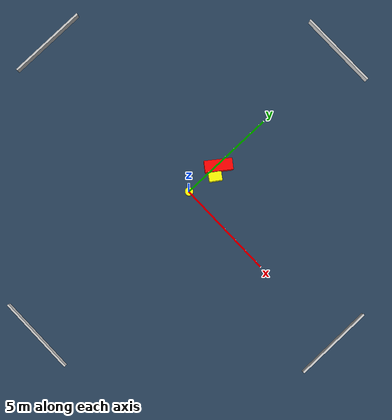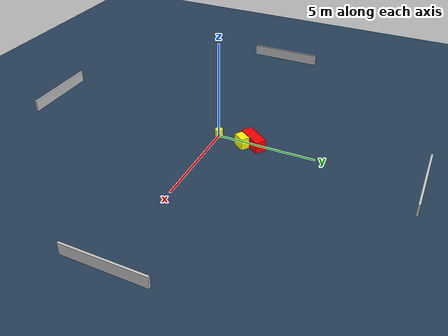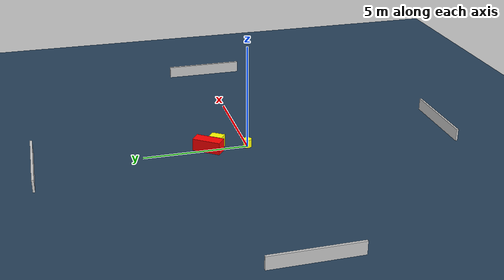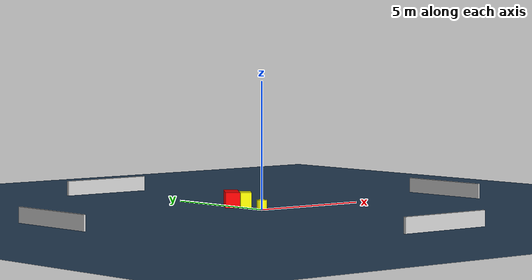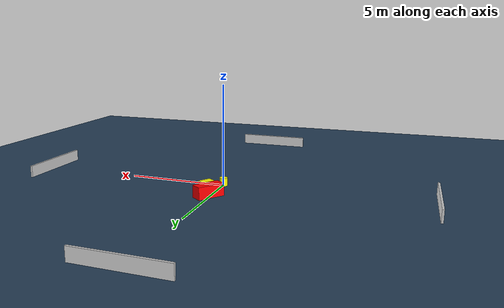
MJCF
<?xml version="1.0" ?>
<mujoco model="generated_environment">
  <option timestep="0.01" integrator="RK4" cone="elliptic"/>
  <default>
    <geom density="1"/>
  </default>
  <asset>
    <texture builtin="gradient" height="3072" name="skybox" rgb1="0.3 0.5 0.7" rgb2="0 0 0" type="skybox" width="512"/>
    <texture builtin="checker" height="300" name="groundplane" rgb1="0.2 0.3 0.4" rgb2="0.1 0.2 0.3" type="2d" width="300"/>
    <material name="groundplane" reflectance="0.2" texrepeat="5 5" texture="groundplane"/>
  </asset>
  <worldbody>
    <light dir="0 0 -1" directional="true" pos="0 0 1.5"/>
    <geom condim="3" friction="0.5 0.005 0.001" material="groundplane" name="floor" pos="0 0 0" size="0 0 0.05" type="plane"/>
    <body name="walls">
      <geom name="wall_1" condim="4" pos="-10.0 0.0 0.3" rgba="0.800000011920929 0.800000011920929 0.800000011920929 1.0" size="0.05 2.0 0.3" type="box"/>
      <geom name="wall_2" condim="4" pos="10.0 0.0 0.3" rgba="0.800000011920929 0.800000011920929 0.800000011920929 1.0" size="0.05 2.0 0.3" type="box"/>
      <geom name="wall_3" condim="4" pos="0.0 -10.0 0.3" rgba="0.800000011920929 0.800000011920929 0.800000011920929 1.0" size="2.0 0.05 0.3" type="box"/>
      <geom name="wall_4" condim="4" pos="0.0 10.0 0.3" rgba="0.800000011920929 0.800000011920929 0.800000011920929 1.0" size="2.0 0.05 0.3" type="box"/>
    </body>
    <body name="robot">
      <joint name="joint_x" type="slide" pos="0 0 0" axis="1 0 0"/>
      <joint name="joint_y" type="slide" pos="0 0 0" axis="0 1 0"/>
      <geom name="robot" type="cylinder" pos="0.0 0.0 0.2" size="0.2 0.2 0.0" mass="5.0" friction="1.0 0.005 0.0001" condim="4" rgba="1.0 1.0 0.0 1.0"/>
    </body>
    <body name="obstacle_1_movable">
      <geom name="obstacle_1_movable" condim="4" pos="0.35176422674260416 1.405437397165802 0.3" euler="0 0 235.24178236261343" friction="0.0 0.005 0.001" rgba="1.0 1.0 0.0 1.0" size="0.32052856473977953 0.21840354023358027 0.3" type="box" mass="0.1"/>
      <joint type="free"/>
    </body>
    <body name="obstacle_2_static">
      <geom name="obstacle_2_static" condim="4" pos="0.06564086853470578 1.8989106476060058 0.3" euler="0 0 53.59932526828641" friction="0.0 0.005 0.001" rgba="1.0 0.0 0.0 1.0" size="0.6871066171892056 0.28294329381875716 0.3" type="box"/>
    </body>
  </worldbody>
  <actuator>
    <motor name="actuator_x" joint="joint_x" gear="1" ctrlrange="-1 1"/>
    <motor name="actuator_y" joint="joint_y" gear="1" ctrlrange="-1 1"/>
  </actuator>
</mujoco>
